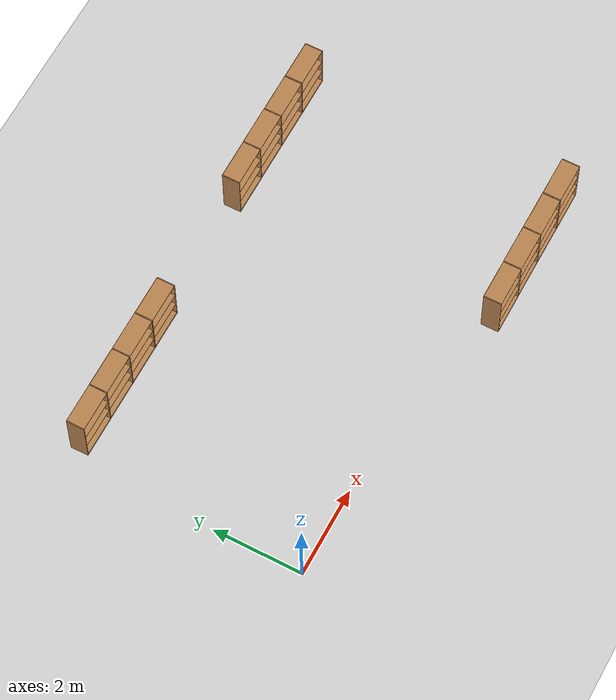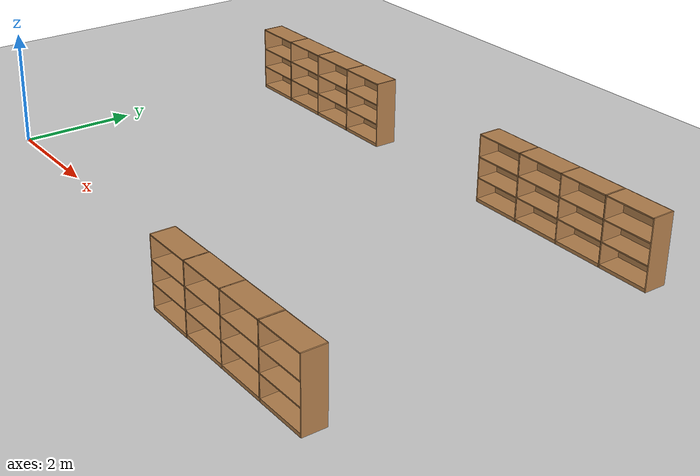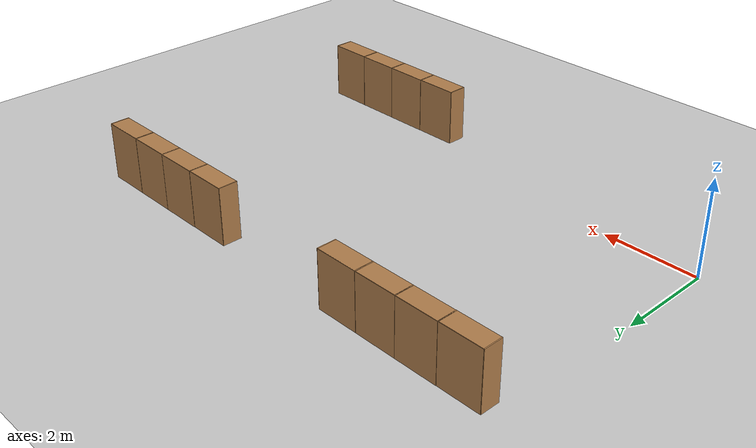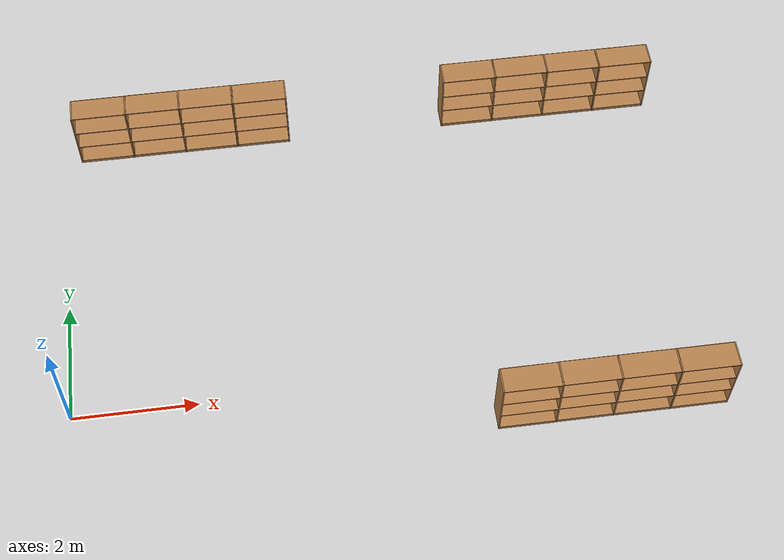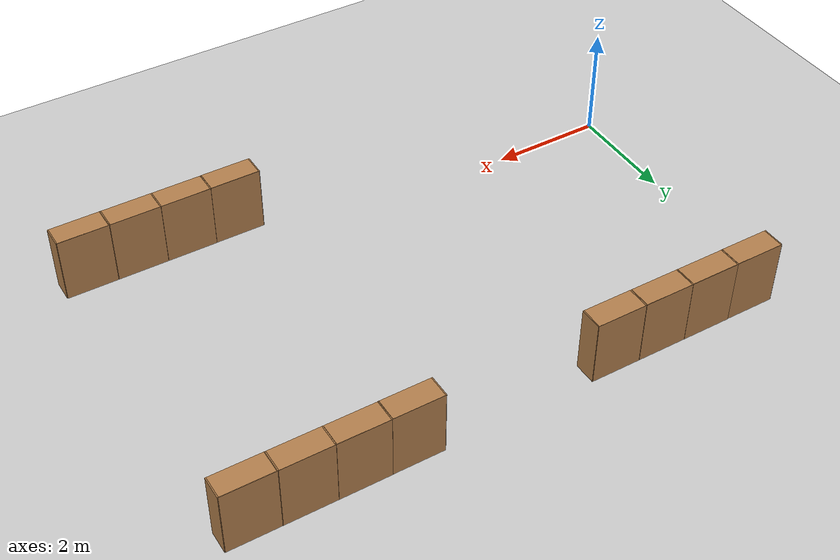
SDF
<sdf version="1.6">
 <world name="default">
  <model name="ground_plane">
   <static>1</static>
   <link name="link">
    <collision name="collision">
     <geometry><plane><normal>0 0 1</normal><size>100 100</size></plane></geometry>
     <surface><friction><ode><mu>100</mu><mu2>50</mu2></ode></friction></surface>
    </collision>
    <visual name="visual">
     <cast_shadows>0</cast_shadows>
     <geometry><plane><normal>0 0 1</normal><size>100 100</size></plane></geometry>
     <material>
      <script><uri>file://media/materials/scripts/gazebo.material</uri><name>Gazebo/Grey</name></script>
     </material>
    </visual>
   </link>
  </model>
  <model name="Bookshelf-4_clone_8">
   <model name="bookshelf">
    <static>1</static>
    <link name="link">
     <inertial><mass>1</mass></inertial>
     <collision name="back">
      <pose>0 0.005 0.6 0 -0 0</pose>
      <geometry><box><size>0.9 0.01 1.2</size></box></geometry>
     </collision>
     <visual name="visual1">
      <pose>0 0.005 0.6 0 -0 0</pose>
      <geometry><box><size>0.9 0.01 1.2</size></box></geometry>
      <material>
       <script><uri>file://media/materials/scripts/gazebo.material</uri><name>Gazebo/Wood</name></script>
      </material>
     </visual>
     <collision name="left_side">
      <pose>0.45 -0.195 0.6 0 -0 0</pose>
      <geometry><box><size>0.02 0.4 1.2</size></box></geometry>
     </collision>
     <visual name="visual2">
      <pose>0.45 -0.195 0.6 0 -0 0</pose>
      <geometry><box><size>0.02 0.4 1.2</size></box></geometry>
      <material>
       <script><uri>file://media/materials/scripts/gazebo.material</uri><name>Gazebo/Wood</name></script>
      </material>
     </visual>
     <collision name="right_side">
      <pose>-0.45 -0.195 0.6 0 -0 0</pose>
      <geometry><box><size>0.02 0.4 1.2</size></box></geometry>
     </collision>
     <visual name="visual3">
      <pose>-0.45 -0.195 0.6 0 -0 0</pose>
      <geometry><box><size>0.02 0.4 1.2</size></box></geometry>
      <material>
       <script><uri>file://media/materials/scripts/gazebo.material</uri><name>Gazebo/Wood</name></script>
      </material>
     </visual>
     <collision name="bottom">
      <pose>0 -0.195 0.03 0 -0 0</pose>
      <geometry><box><size>0.88 0.4 0.06</size></box></geometry>
     </collision>
     <visual name="visual4">
      <pose>0 -0.195 0.03 0 -0 0</pose>
      <geometry><box><size>0.88 0.4 0.06</size></box></geometry>
      <material>
       <script><uri>file://media/materials/scripts/gazebo.material</uri><name>Gazebo/Wood</name></script>
      </material>
     </visual>
     <collision name="top">
      <pose>0 -0.195 1.19 0 -0 0</pose>
      <geometry><box><size>0.88 0.4 0.02</size></box></geometry>
     </collision>
     <visual name="visual5">
      <pose>0 -0.195 1.19 0 -0 0</pose>
      <geometry><box><size>0.88 0.4 0.02</size></box></geometry>
      <material>
       <script><uri>file://media/materials/scripts/gazebo.material</uri><name>Gazebo/Wood</name></script>
      </material>
     </visual>
     <collision name="low_shelf">
      <pose>0 -0.195 0.43 0 -0 0</pose>
      <geometry><box><size>0.88 0.4 0.02</size></box></geometry>
     </collision>
     <visual name="visual6">
      <pose>0 -0.195 0.43 0 -0 0</pose>
      <geometry><box><size>0.88 0.4 0.02</size></box></geometry>
      <material>
       <script><uri>file://media/materials/scripts/gazebo.material</uri><name>Gazebo/Wood</name></script>
      </material>
     </visual>
     <collision name="high_shelf">
      <pose>0 -0.195 0.8 0 -0 0</pose>
      <geometry><box><size>0.88 0.4 0.02</size></box></geometry>
     </collision>
     <visual name="visual7">
      <pose>0 -0.195 0.8 0 -0 0</pose>
      <geometry><box><size>0.88 0.4 0.02</size></box></geometry>
      <material>
       <script><uri>file://media/materials/scripts/gazebo.material</uri><name>Gazebo/Wood</name></script>
      </material>
     </visual>
    </link>
    <pose>-1.35671 -0.002097 0 0 -0 0</pose>
   </model>
   <model name="bookshelf_0">
    <static>1</static>
    <link name="link">
     <inertial><mass>1</mass></inertial>
     <collision name="back">
      <pose>0 0.005 0.6 0 -0 0</pose>
      <geometry><box><size>0.9 0.01 1.2</size></box></geometry>
     </collision>
     <visual name="visual1">
      <pose>0 0.005 0.6 0 -0 0</pose>
      <geometry><box><size>0.9 0.01 1.2</size></box></geometry>
      <material>
       <script><uri>file://media/materials/scripts/gazebo.material</uri><name>Gazebo/Wood</name></script>
      </material>
     </visual>
     <collision name="left_side">
      <pose>0.45 -0.195 0.6 0 -0 0</pose>
      <geometry><box><size>0.02 0.4 1.2</size></box></geometry>
     </collision>
     <visual name="visual2">
      <pose>0.45 -0.195 0.6 0 -0 0</pose>
      <geometry><box><size>0.02 0.4 1.2</size></box></geometry>
      <material>
       <script><uri>file://media/materials/scripts/gazebo.material</uri><name>Gazebo/Wood</name></script>
      </material>
     </visual>
     <collision name="right_side">
      <pose>-0.45 -0.195 0.6 0 -0 0</pose>
      <geometry><box><size>0.02 0.4 1.2</size></box></geometry>
     </collision>
     <visual name="visual3">
      <pose>-0.45 -0.195 0.6 0 -0 0</pose>
      <geometry><box><size>0.02 0.4 1.2</size></box></geometry>
      <material>
       <script><uri>file://media/materials/scripts/gazebo.material</uri><name>Gazebo/Wood</name></script>
      </material>
     </visual>
     <collision name="bottom">
      <pose>0 -0.195 0.03 0 -0 0</pose>
      <geometry><box><size>0.88 0.4 0.06</size></box></geometry>
     </collision>
     <visual name="visual4">
      <pose>0 -0.195 0.03 0 -0 0</pose>
      <geometry><box><size>0.88 0.4 0.06</size></box></geometry>
      <material>
       <script><uri>file://media/materials/scripts/gazebo.material</uri><name>Gazebo/Wood</name></script>
      </material>
     </visual>
     <collision name="top">
      <pose>0 -0.195 1.19 0 -0 0</pose>
      <geometry><box><size>0.88 0.4 0.02</size></box></geometry>
     </collision>
     <visual name="visual5">
      <pose>0 -0.195 1.19 0 -0 0</pose>
      <geometry><box><size>0.88 0.4 0.02</size></box></geometry>
      <material>
       <script><uri>file://media/materials/scripts/gazebo.material</uri><name>Gazebo/Wood</name></script>
      </material>
     </visual>
     <collision name="low_shelf">
      <pose>0 -0.195 0.43 0 -0 0</pose>
      <geometry><box><size>0.88 0.4 0.02</size></box></geometry>
     </collision>
     <visual name="visual6">
      <pose>0 -0.195 0.43 0 -0 0</pose>
      <geometry><box><size>0.88 0.4 0.02</size></box></geometry>
      <material>
       <script><uri>file://media/materials/scripts/gazebo.material</uri><name>Gazebo/Wood</name></script>
      </material>
     </visual>
     <collision name="high_shelf">
      <pose>0 -0.195 0.8 0 -0 0</pose>
      <geometry><box><size>0.88 0.4 0.02</size></box></geometry>
     </collision>
     <visual name="visual7">
      <pose>0 -0.195 0.8 0 -0 0</pose>
      <geometry><box><size>0.88 0.4 0.02</size></box></geometry>
      <material>
       <script><uri>file://media/materials/scripts/gazebo.material</uri><name>Gazebo/Wood</name></script>
      </material>
     </visual>
    </link>
    <pose>-0.452974 0.001386 0 0 -0 0</pose>
   </model>
   <model name="bookshelf_1">
    <static>1</static>
    <link name="link">
     <inertial><mass>1</mass></inertial>
     <collision name="back">
      <pose>0 0.005 0.6 0 -0 0</pose>
      <geometry><box><size>0.9 0.01 1.2</size></box></geometry>
     </collision>
     <visual name="visual1">
      <pose>0 0.005 0.6 0 -0 0</pose>
      <geometry><box><size>0.9 0.01 1.2</size></box></geometry>
      <material>
       <script><uri>file://media/materials/scripts/gazebo.material</uri><name>Gazebo/Wood</name></script>
      </material>
     </visual>
     <collision name="left_side">
      <pose>0.45 -0.195 0.6 0 -0 0</pose>
      <geometry><box><size>0.02 0.4 1.2</size></box></geometry>
     </collision>
     <visual name="visual2">
      <pose>0.45 -0.195 0.6 0 -0 0</pose>
      <geometry><box><size>0.02 0.4 1.2</size></box></geometry>
      <material>
       <script><uri>file://media/materials/scripts/gazebo.material</uri><name>Gazebo/Wood</name></script>
      </material>
     </visual>
     <collision name="right_side">
      <pose>-0.45 -0.195 0.6 0 -0 0</pose>
      <geometry><box><size>0.02 0.4 1.2</size></box></geometry>
     </collision>
     <visual name="visual3">
      <pose>-0.45 -0.195 0.6 0 -0 0</pose>
      <geometry><box><size>0.02 0.4 1.2</size></box></geometry>
      <material>
       <script><uri>file://media/materials/scripts/gazebo.material</uri><name>Gazebo/Wood</name></script>
      </material>
     </visual>
     <collision name="bottom">
      <pose>0 -0.195 0.03 0 -0 0</pose>
      <geometry><box><size>0.88 0.4 0.06</size></box></geometry>
     </collision>
     <visual name="visual4">
      <pose>0 -0.195 0.03 0 -0 0</pose>
      <geometry><box><size>0.88 0.4 0.06</size></box></geometry>
      <material>
       <script><uri>file://media/materials/scripts/gazebo.material</uri><name>Gazebo/Wood</name></script>
      </material>
     </visual>
     <collision name="top">
      <pose>0 -0.195 1.19 0 -0 0</pose>
      <geometry><box><size>0.88 0.4 0.02</size></box></geometry>
     </collision>
     <visual name="visual5">
      <pose>0 -0.195 1.19 0 -0 0</pose>
      <geometry><box><size>0.88 0.4 0.02</size></box></geometry>
      <material>
       <script><uri>file://media/materials/scripts/gazebo.material</uri><name>Gazebo/Wood</name></script>
      </material>
     </visual>
     <collision name="low_shelf">
      <pose>0 -0.195 0.43 0 -0 0</pose>
      <geometry><box><size>0.88 0.4 0.02</size></box></geometry>
     </collision>
     <visual name="visual6">
      <pose>0 -0.195 0.43 0 -0 0</pose>
      <geometry><box><size>0.88 0.4 0.02</size></box></geometry>
      <material>
       <script><uri>file://media/materials/scripts/gazebo.material</uri><name>Gazebo/Wood</name></script>
      </material>
     </visual>
     <collision name="high_shelf">
      <pose>0 -0.195 0.8 0 -0 0</pose>
      <geometry><box><size>0.88 0.4 0.02</size></box></geometry>
     </collision>
     <visual name="visual7">
      <pose>0 -0.195 0.8 0 -0 0</pose>
      <geometry><box><size>0.88 0.4 0.02</size></box></geometry>
      <material>
       <script><uri>file://media/materials/scripts/gazebo.material</uri><name>Gazebo/Wood</name></script>
      </material>
     </visual>
    </link>
    <pose>0.450456 0.000733 0 0 -0 0</pose>
   </model>
   <model name="bookshelf_2">
    <static>1</static>
    <link name="link">
     <inertial><mass>1</mass></inertial>
     <collision name="back">
      <pose>0 0.005 0.6 0 -0 0</pose>
      <geometry><box><size>0.9 0.01 1.2</size></box></geometry>
     </collision>
     <visual name="visual1">
      <pose>0 0.005 0.6 0 -0 0</pose>
      <geometry><box><size>0.9 0.01 1.2</size></box></geometry>
      <material>
       <script><uri>file://media/materials/scripts/gazebo.material</uri><name>Gazebo/Wood</name></script>
      </material>
     </visual>
     <collision name="left_side">
      <pose>0.45 -0.195 0.6 0 -0 0</pose>
      <geometry><box><size>0.02 0.4 1.2</size></box></geometry>
     </collision>
     <visual name="visual2">
      <pose>0.45 -0.195 0.6 0 -0 0</pose>
      <geometry><box><size>0.02 0.4 1.2</size></box></geometry>
      <material>
       <script><uri>file://media/materials/scripts/gazebo.material</uri><name>Gazebo/Wood</name></script>
      </material>
     </visual>
     <collision name="right_side">
      <pose>-0.45 -0.195 0.6 0 -0 0</pose>
      <geometry><box><size>0.02 0.4 1.2</size></box></geometry>
     </collision>
     <visual name="visual3">
      <pose>-0.45 -0.195 0.6 0 -0 0</pose>
      <geometry><box><size>0.02 0.4 1.2</size></box></geometry>
      <material>
       <script><uri>file://media/materials/scripts/gazebo.material</uri><name>Gazebo/Wood</name></script>
      </material>
     </visual>
     <collision name="bottom">
      <pose>0 -0.195 0.03 0 -0 0</pose>
      <geometry><box><size>0.88 0.4 0.06</size></box></geometry>
     </collision>
     <visual name="visual4">
      <pose>0 -0.195 0.03 0 -0 0</pose>
      <geometry><box><size>0.88 0.4 0.06</size></box></geometry>
      <material>
       <script><uri>file://media/materials/scripts/gazebo.material</uri><name>Gazebo/Wood</name></script>
      </material>
     </visual>
     <collision name="top">
      <pose>0 -0.195 1.19 0 -0 0</pose>
      <geometry><box><size>0.88 0.4 0.02</size></box></geometry>
     </collision>
     <visual name="visual5">
      <pose>0 -0.195 1.19 0 -0 0</pose>
      <geometry><box><size>0.88 0.4 0.02</size></box></geometry>
      <material>
       <script><uri>file://media/materials/scripts/gazebo.material</uri><name>Gazebo/Wood</name></script>
      </material>
     </visual>
     <collision name="low_shelf">
      <pose>0 -0.195 0.43 0 -0 0</pose>
      <geometry><box><size>0.88 0.4 0.02</size></box></geometry>
     </collision>
     <visual name="visual6">
      <pose>0 -0.195 0.43 0 -0 0</pose>
      <geometry><box><size>0.88 0.4 0.02</size></box></geometry>
      <material>
       <script><uri>file://media/materials/scripts/gazebo.material</uri><name>Gazebo/Wood</name></script>
      </material>
     </visual>
     <collision name="high_shelf">
      <pose>0 -0.195 0.8 0 -0 0</pose>
      <geometry><box><size>0.88 0.4 0.02</size></box></geometry>
     </collision>
     <visual name="visual7">
      <pose>0 -0.195 0.8 0 -0 0</pose>
      <geometry><box><size>0.88 0.4 0.02</size></box></geometry>
      <material>
       <script><uri>file://media/materials/scripts/gazebo.material</uri><name>Gazebo/Wood</name></script>
      </material>
     </visual>
    </link>
    <pose>1.35922 -1.7e-05 0 0 -0 0</pose>
   </model>
   <static>0</static>
   <pose>8.37331 -0.621397 0 0 -0 0</pose>
  </model>
  <model name="Bookshelf-4_clone_6_clone">
   <model name="bookshelf">
    <static>1</static>
    <link name="link">
     <inertial><mass>1</mass></inertial>
     <collision name="back">
      <pose>0 0.005 0.6 0 -0 0</pose>
      <geometry><box><size>0.9 0.01 1.2</size></box></geometry>
     </collision>
     <visual name="visual1">
      <pose>0 0.005 0.6 0 -0 0</pose>
      <geometry><box><size>0.9 0.01 1.2</size></box></geometry>
      <material>
       <script><uri>file://media/materials/scripts/gazebo.material</uri><name>Gazebo/Wood</name></script>
      </material>
     </visual>
     <collision name="left_side">
      <pose>0.45 -0.195 0.6 0 -0 0</pose>
      <geometry><box><size>0.02 0.4 1.2</size></box></geometry>
     </collision>
     <visual name="visual2">
      <pose>0.45 -0.195 0.6 0 -0 0</pose>
      <geometry><box><size>0.02 0.4 1.2</size></box></geometry>
      <material>
       <script><uri>file://media/materials/scripts/gazebo.material</uri><name>Gazebo/Wood</name></script>
      </material>
     </visual>
     <collision name="right_side">
      <pose>-0.45 -0.195 0.6 0 -0 0</pose>
      <geometry><box><size>0.02 0.4 1.2</size></box></geometry>
     </collision>
     <visual name="visual3">
      <pose>-0.45 -0.195 0.6 0 -0 0</pose>
      <geometry><box><size>0.02 0.4 1.2</size></box></geometry>
      <material>
       <script><uri>file://media/materials/scripts/gazebo.material</uri><name>Gazebo/Wood</name></script>
      </material>
     </visual>
     <collision name="bottom">
      <pose>0 -0.195 0.03 0 -0 0</pose>
      <geometry><box><size>0.88 0.4 0.06</size></box></geometry>
     </collision>
     <visual name="visual4">
      <pose>0 -0.195 0.03 0 -0 0</pose>
      <geometry><box><size>0.88 0.4 0.06</size></box></geometry>
      <material>
       <script><uri>file://media/materials/scripts/gazebo.material</uri><name>Gazebo/Wood</name></script>
      </material>
     </visual>
     <collision name="top">
      <pose>0 -0.195 1.19 0 -0 0</pose>
      <geometry><box><size>0.88 0.4 0.02</size></box></geometry>
     </collision>
     <visual name="visual5">
      <pose>0 -0.195 1.19 0 -0 0</pose>
      <geometry><box><size>0.88 0.4 0.02</size></box></geometry>
      <material>
       <script><uri>file://media/materials/scripts/gazebo.material</uri><name>Gazebo/Wood</name></script>
      </material>
     </visual>
     <collision name="low_shelf">
      <pose>0 -0.195 0.43 0 -0 0</pose>
      <geometry><box><size>0.88 0.4 0.02</size></box></geometry>
     </collision>
     <visual name="visual6">
      <pose>0 -0.195 0.43 0 -0 0</pose>
      <geometry><box><size>0.88 0.4 0.02</size></box></geometry>
      <material>
       <script><uri>file://media/materials/scripts/gazebo.material</uri><name>Gazebo/Wood</name></script>
      </material>
     </visual>
     <collision name="high_shelf">
      <pose>0 -0.195 0.8 0 -0 0</pose>
      <geometry><box><size>0.88 0.4 0.02</size></box></geometry>
     </collision>
     <visual name="visual7">
      <pose>0 -0.195 0.8 0 -0 0</pose>
      <geometry><box><size>0.88 0.4 0.02</size></box></geometry>
      <material>
       <script><uri>file://media/materials/scripts/gazebo.material</uri><name>Gazebo/Wood</name></script>
      </material>
     </visual>
    </link>
    <pose>-1.35671 -0.002097 0 0 -0 0</pose>
   </model>
   <model name="bookshelf_0">
    <static>1</static>
    <link name="link">
     <inertial><mass>1</mass></inertial>
     <collision name="back">
      <pose>0 0.005 0.6 0 -0 0</pose>
      <geometry><box><size>0.9 0.01 1.2</size></box></geometry>
     </collision>
     <visual name="visual1">
      <pose>0 0.005 0.6 0 -0 0</pose>
      <geometry><box><size>0.9 0.01 1.2</size></box></geometry>
      <material>
       <script><uri>file://media/materials/scripts/gazebo.material</uri><name>Gazebo/Wood</name></script>
      </material>
     </visual>
     <collision name="left_side">
      <pose>0.45 -0.195 0.6 0 -0 0</pose>
      <geometry><box><size>0.02 0.4 1.2</size></box></geometry>
     </collision>
     <visual name="visual2">
      <pose>0.45 -0.195 0.6 0 -0 0</pose>
      <geometry><box><size>0.02 0.4 1.2</size></box></geometry>
      <material>
       <script><uri>file://media/materials/scripts/gazebo.material</uri><name>Gazebo/Wood</name></script>
      </material>
     </visual>
     <collision name="right_side">
      <pose>-0.45 -0.195 0.6 0 -0 0</pose>
      <geometry><box><size>0.02 0.4 1.2</size></box></geometry>
     </collision>
     <visual name="visual3">
      <pose>-0.45 -0.195 0.6 0 -0 0</pose>
      <geometry><box><size>0.02 0.4 1.2</size></box></geometry>
      <material>
       <script><uri>file://media/materials/scripts/gazebo.material</uri><name>Gazebo/Wood</name></script>
      </material>
     </visual>
     <collision name="bottom">
      <pose>0 -0.195 0.03 0 -0 0</pose>
      <geometry><box><size>0.88 0.4 0.06</size></box></geometry>
     </collision>
     <visual name="visual4">
      <pose>0 -0.195 0.03 0 -0 0</pose>
      <geometry><box><size>0.88 0.4 0.06</size></box></geometry>
      <material>
       <script><uri>file://media/materials/scripts/gazebo.material</uri><name>Gazebo/Wood</name></script>
      </material>
     </visual>
     <collision name="top">
      <pose>0 -0.195 1.19 0 -0 0</pose>
      <geometry><box><size>0.88 0.4 0.02</size></box></geometry>
     </collision>
     <visual name="visual5">
      <pose>0 -0.195 1.19 0 -0 0</pose>
      <geometry><box><size>0.88 0.4 0.02</size></box></geometry>
      <material>
       <script><uri>file://media/materials/scripts/gazebo.material</uri><name>Gazebo/Wood</name></script>
      </material>
     </visual>
     <collision name="low_shelf">
      <pose>0 -0.195 0.43 0 -0 0</pose>
      <geometry><box><size>0.88 0.4 0.02</size></box></geometry>
     </collision>
     <visual name="visual6">
      <pose>0 -0.195 0.43 0 -0 0</pose>
      <geometry><box><size>0.88 0.4 0.02</size></box></geometry>
      <material>
       <script><uri>file://media/materials/scripts/gazebo.material</uri><name>Gazebo/Wood</name></script>
      </material>
     </visual>
     <collision name="high_shelf">
      <pose>0 -0.195 0.8 0 -0 0</pose>
      <geometry><box><size>0.88 0.4 0.02</size></box></geometry>
     </collision>
     <visual name="visual7">
      <pose>0 -0.195 0.8 0 -0 0</pose>
      <geometry><box><size>0.88 0.4 0.02</size></box></geometry>
      <material>
       <script><uri>file://media/materials/scripts/gazebo.material</uri><name>Gazebo/Wood</name></script>
      </material>
     </visual>
    </link>
    <pose>-0.452974 0.001386 0 0 -0 0</pose>
   </model>
   <model name="bookshelf_1">
    <static>1</static>
    <link name="link">
     <inertial><mass>1</mass></inertial>
     <collision name="back">
      <pose>0 0.005 0.6 0 -0 0</pose>
      <geometry><box><size>0.9 0.01 1.2</size></box></geometry>
     </collision>
     <visual name="visual1">
      <pose>0 0.005 0.6 0 -0 0</pose>
      <geometry><box><size>0.9 0.01 1.2</size></box></geometry>
      <material>
       <script><uri>file://media/materials/scripts/gazebo.material</uri><name>Gazebo/Wood</name></script>
      </material>
     </visual>
     <collision name="left_side">
      <pose>0.45 -0.195 0.6 0 -0 0</pose>
      <geometry><box><size>0.02 0.4 1.2</size></box></geometry>
     </collision>
     <visual name="visual2">
      <pose>0.45 -0.195 0.6 0 -0 0</pose>
      <geometry><box><size>0.02 0.4 1.2</size></box></geometry>
      <material>
       <script><uri>file://media/materials/scripts/gazebo.material</uri><name>Gazebo/Wood</name></script>
      </material>
     </visual>
     <collision name="right_side">
      <pose>-0.45 -0.195 0.6 0 -0 0</pose>
      <geometry><box><size>0.02 0.4 1.2</size></box></geometry>
     </collision>
     <visual name="visual3">
      <pose>-0.45 -0.195 0.6 0 -0 0</pose>
      <geometry><box><size>0.02 0.4 1.2</size></box></geometry>
      <material>
       <script><uri>file://media/materials/scripts/gazebo.material</uri><name>Gazebo/Wood</name></script>
      </material>
     </visual>
     <collision name="bottom">
      <pose>0 -0.195 0.03 0 -0 0</pose>
      <geometry><box><size>0.88 0.4 0.06</size></box></geometry>
     </collision>
     <visual name="visual4">
      <pose>0 -0.195 0.03 0 -0 0</pose>
      <geometry><box><size>0.88 0.4 0.06</size></box></geometry>
      <material>
       <script><uri>file://media/materials/scripts/gazebo.material</uri><name>Gazebo/Wood</name></script>
      </material>
     </visual>
     <collision name="top">
      <pose>0 -0.195 1.19 0 -0 0</pose>
      <geometry><box><size>0.88 0.4 0.02</size></box></geometry>
     </collision>
     <visual name="visual5">
      <pose>0 -0.195 1.19 0 -0 0</pose>
      <geometry><box><size>0.88 0.4 0.02</size></box></geometry>
      <material>
       <script><uri>file://media/materials/scripts/gazebo.material</uri><name>Gazebo/Wood</name></script>
      </material>
     </visual>
     <collision name="low_shelf">
      <pose>0 -0.195 0.43 0 -0 0</pose>
      <geometry><box><size>0.88 0.4 0.02</size></box></geometry>
     </collision>
     <visual name="visual6">
      <pose>0 -0.195 0.43 0 -0 0</pose>
      <geometry><box><size>0.88 0.4 0.02</size></box></geometry>
      <material>
       <script><uri>file://media/materials/scripts/gazebo.material</uri><name>Gazebo/Wood</name></script>
      </material>
     </visual>
     <collision name="high_shelf">
      <pose>0 -0.195 0.8 0 -0 0</pose>
      <geometry><box><size>0.88 0.4 0.02</size></box></geometry>
     </collision>
     <visual name="visual7">
      <pose>0 -0.195 0.8 0 -0 0</pose>
      <geometry><box><size>0.88 0.4 0.02</size></box></geometry>
      <material>
       <script><uri>file://media/materials/scripts/gazebo.material</uri><name>Gazebo/Wood</name></script>
      </material>
     </visual>
    </link>
    <pose>0.450456 0.000733 0 0 -0 0</pose>
   </model>
   <model name="bookshelf_2">
    <static>1</static>
    <link name="link">
     <inertial><mass>1</mass></inertial>
     <collision name="back">
      <pose>0 0.005 0.6 0 -0 0</pose>
      <geometry><box><size>0.9 0.01 1.2</size></box></geometry>
     </collision>
     <visual name="visual1">
      <pose>0 0.005 0.6 0 -0 0</pose>
      <geometry><box><size>0.9 0.01 1.2</size></box></geometry>
      <material>
       <script><uri>file://media/materials/scripts/gazebo.material</uri><name>Gazebo/Wood</name></script>
      </material>
     </visual>
     <collision name="left_side">
      <pose>0.45 -0.195 0.6 0 -0 0</pose>
      <geometry><box><size>0.02 0.4 1.2</size></box></geometry>
     </collision>
     <visual name="visual2">
      <pose>0.45 -0.195 0.6 0 -0 0</pose>
      <geometry><box><size>0.02 0.4 1.2</size></box></geometry>
      <material>
       <script><uri>file://media/materials/scripts/gazebo.material</uri><name>Gazebo/Wood</name></script>
      </material>
     </visual>
     <collision name="right_side">
      <pose>-0.45 -0.195 0.6 0 -0 0</pose>
      <geometry><box><size>0.02 0.4 1.2</size></box></geometry>
     </collision>
     <visual name="visual3">
      <pose>-0.45 -0.195 0.6 0 -0 0</pose>
      <geometry><box><size>0.02 0.4 1.2</size></box></geometry>
      <material>
       <script><uri>file://media/materials/scripts/gazebo.material</uri><name>Gazebo/Wood</name></script>
      </material>
     </visual>
     <collision name="bottom">
      <pose>0 -0.195 0.03 0 -0 0</pose>
      <geometry><box><size>0.88 0.4 0.06</size></box></geometry>
     </collision>
     <visual name="visual4">
      <pose>0 -0.195 0.03 0 -0 0</pose>
      <geometry><box><size>0.88 0.4 0.06</size></box></geometry>
      <material>
       <script><uri>file://media/materials/scripts/gazebo.material</uri><name>Gazebo/Wood</name></script>
      </material>
     </visual>
     <collision name="top">
      <pose>0 -0.195 1.19 0 -0 0</pose>
      <geometry><box><size>0.88 0.4 0.02</size></box></geometry>
     </collision>
     <visual name="visual5">
      <pose>0 -0.195 1.19 0 -0 0</pose>
      <geometry><box><size>0.88 0.4 0.02</size></box></geometry>
      <material>
       <script><uri>file://media/materials/scripts/gazebo.material</uri><name>Gazebo/Wood</name></script>
      </material>
     </visual>
     <collision name="low_shelf">
      <pose>0 -0.195 0.43 0 -0 0</pose>
      <geometry><box><size>0.88 0.4 0.02</size></box></geometry>
     </collision>
     <visual name="visual6">
      <pose>0 -0.195 0.43 0 -0 0</pose>
      <geometry><box><size>0.88 0.4 0.02</size></box></geometry>
      <material>
       <script><uri>file://media/materials/scripts/gazebo.material</uri><name>Gazebo/Wood</name></script>
      </material>
     </visual>
     <collision name="high_shelf">
      <pose>0 -0.195 0.8 0 -0 0</pose>
      <geometry><box><size>0.88 0.4 0.02</size></box></geometry>
     </collision>
     <visual name="visual7">
      <pose>0 -0.195 0.8 0 -0 0</pose>
      <geometry><box><size>0.88 0.4 0.02</size></box></geometry>
      <material>
       <script><uri>file://media/materials/scripts/gazebo.material</uri><name>Gazebo/Wood</name></script>
      </material>
     </visual>
    </link>
    <pose>1.35922 -1.7e-05 0 0 -0 0</pose>
   </model>
   <static>0</static>
   <pose>8.37422 5.37185 0 0 -0 0</pose>
  </model>
  <model name="Bookshelf-4_clone_6_clone_0">
   <model name="bookshelf">
    <static>1</static>
    <link name="link">
     <inertial><mass>1</mass></inertial>
     <collision name="back">
      <pose>0 0.005 0.6 0 -0 0</pose>
      <geometry><box><size>0.9 0.01 1.2</size></box></geometry>
     </collision>
     <visual name="visual1">
      <pose>0 0.005 0.6 0 -0 0</pose>
      <geometry><box><size>0.9 0.01 1.2</size></box></geometry>
      <material>
       <script><uri>file://media/materials/scripts/gazebo.material</uri><name>Gazebo/Wood</name></script>
      </material>
     </visual>
     <collision name="left_side">
      <pose>0.45 -0.195 0.6 0 -0 0</pose>
      <geometry><box><size>0.02 0.4 1.2</size></box></geometry>
     </collision>
     <visual name="visual2">
      <pose>0.45 -0.195 0.6 0 -0 0</pose>
      <geometry><box><size>0.02 0.4 1.2</size></box></geometry>
      <material>
       <script><uri>file://media/materials/scripts/gazebo.material</uri><name>Gazebo/Wood</name></script>
      </material>
     </visual>
     <collision name="right_side">
      <pose>-0.45 -0.195 0.6 0 -0 0</pose>
      <geometry><box><size>0.02 0.4 1.2</size></box></geometry>
     </collision>
     <visual name="visual3">
      <pose>-0.45 -0.195 0.6 0 -0 0</pose>
      <geometry><box><size>0.02 0.4 1.2</size></box></geometry>
      <material>
       <script><uri>file://media/materials/scripts/gazebo.material</uri><name>Gazebo/Wood</name></script>
      </material>
     </visual>
     <collision name="bottom">
      <pose>0 -0.195 0.03 0 -0 0</pose>
      <geometry><box><size>0.88 0.4 0.06</size></box></geometry>
     </collision>
     <visual name="visual4">
      <pose>0 -0.195 0.03 0 -0 0</pose>
      <geometry><box><size>0.88 0.4 0.06</size></box></geometry>
      <material>
       <script><uri>file://media/materials/scripts/gazebo.material</uri><name>Gazebo/Wood</name></script>
      </material>
     </visual>
     <collision name="top">
      <pose>0 -0.195 1.19 0 -0 0</pose>
      <geometry><box><size>0.88 0.4 0.02</size></box></geometry>
     </collision>
     <visual name="visual5">
      <pose>0 -0.195 1.19 0 -0 0</pose>
      <geometry><box><size>0.88 0.4 0.02</size></box></geometry>
      <material>
       <script><uri>file://media/materials/scripts/gazebo.material</uri><name>Gazebo/Wood</name></script>
      </material>
     </visual>
     <collision name="low_shelf">
      <pose>0 -0.195 0.43 0 -0 0</pose>
      <geometry><box><size>0.88 0.4 0.02</size></box></geometry>
     </collision>
     <visual name="visual6">
      <pose>0 -0.195 0.43 0 -0 0</pose>
      <geometry><box><size>0.88 0.4 0.02</size></box></geometry>
      <material>
       <script><uri>file://media/materials/scripts/gazebo.material</uri><name>Gazebo/Wood</name></script>
      </material>
     </visual>
     <collision name="high_shelf">
      <pose>0 -0.195 0.8 0 -0 0</pose>
      <geometry><box><size>0.88 0.4 0.02</size></box></geometry>
     </collision>
     <visual name="visual7">
      <pose>0 -0.195 0.8 0 -0 0</pose>
      <geometry><box><size>0.88 0.4 0.02</size></box></geometry>
      <material>
       <script><uri>file://media/materials/scripts/gazebo.material</uri><name>Gazebo/Wood</name></script>
      </material>
     </visual>
    </link>
    <pose>-1.35671 -0.002097 0 0 -0 0</pose>
   </model>
   <model name="bookshelf_0">
    <static>1</static>
    <link name="link">
     <inertial><mass>1</mass></inertial>
     <collision name="back">
      <pose>0 0.005 0.6 0 -0 0</pose>
      <geometry><box><size>0.9 0.01 1.2</size></box></geometry>
     </collision>
     <visual name="visual1">
      <pose>0 0.005 0.6 0 -0 0</pose>
      <geometry><box><size>0.9 0.01 1.2</size></box></geometry>
      <material>
       <script><uri>file://media/materials/scripts/gazebo.material</uri><name>Gazebo/Wood</name></script>
      </material>
     </visual>
     <collision name="left_side">
      <pose>0.45 -0.195 0.6 0 -0 0</pose>
      <geometry><box><size>0.02 0.4 1.2</size></box></geometry>
     </collision>
     <visual name="visual2">
      <pose>0.45 -0.195 0.6 0 -0 0</pose>
      <geometry><box><size>0.02 0.4 1.2</size></box></geometry>
      <material>
       <script><uri>file://media/materials/scripts/gazebo.material</uri><name>Gazebo/Wood</name></script>
      </material>
     </visual>
     <collision name="right_side">
      <pose>-0.45 -0.195 0.6 0 -0 0</pose>
      <geometry><box><size>0.02 0.4 1.2</size></box></geometry>
     </collision>
     <visual name="visual3">
      <pose>-0.45 -0.195 0.6 0 -0 0</pose>
      <geometry><box><size>0.02 0.4 1.2</size></box></geometry>
      <material>
       <script><uri>file://media/materials/scripts/gazebo.material</uri><name>Gazebo/Wood</name></script>
      </material>
     </visual>
     <collision name="bottom">
      <pose>0 -0.195 0.03 0 -0 0</pose>
      <geometry><box><size>0.88 0.4 0.06</size></box></geometry>
     </collision>
     <visual name="visual4">
      <pose>0 -0.195 0.03 0 -0 0</pose>
      <geometry><box><size>0.88 0.4 0.06</size></box></geometry>
      <material>
       <script><uri>file://media/materials/scripts/gazebo.material</uri><name>Gazebo/Wood</name></script>
      </material>
     </visual>
     <collision name="top">
      <pose>0 -0.195 1.19 0 -0 0</pose>
      <geometry><box><size>0.88 0.4 0.02</size></box></geometry>
     </collision>
     <visual name="visual5">
      <pose>0 -0.195 1.19 0 -0 0</pose>
      <geometry><box><size>0.88 0.4 0.02</size></box></geometry>
      <material>
       <script><uri>file://media/materials/scripts/gazebo.material</uri><name>Gazebo/Wood</name></script>
      </material>
     </visual>
     <collision name="low_shelf">
      <pose>0 -0.195 0.43 0 -0 0</pose>
      <geometry><box><size>0.88 0.4 0.02</size></box></geometry>
     </collision>
     <visual name="visual6">
      <pose>0 -0.195 0.43 0 -0 0</pose>
      <geometry><box><size>0.88 0.4 0.02</size></box></geometry>
      <material>
       <script><uri>file://media/materials/scripts/gazebo.material</uri><name>Gazebo/Wood</name></script>
      </material>
     </visual>
     <collision name="high_shelf">
      <pose>0 -0.195 0.8 0 -0 0</pose>
      <geometry><box><size>0.88 0.4 0.02</size></box></geometry>
     </collision>
     <visual name="visual7">
      <pose>0 -0.195 0.8 0 -0 0</pose>
      <geometry><box><size>0.88 0.4 0.02</size></box></geometry>
      <material>
       <script><uri>file://media/materials/scripts/gazebo.material</uri><name>Gazebo/Wood</name></script>
      </material>
     </visual>
    </link>
    <pose>-0.452974 0.001386 0 0 -0 0</pose>
   </model>
   <model name="bookshelf_1">
    <static>1</static>
    <link name="link">
     <inertial><mass>1</mass></inertial>
     <collision name="back">
      <pose>0 0.005 0.6 0 -0 0</pose>
      <geometry><box><size>0.9 0.01 1.2</size></box></geometry>
     </collision>
     <visual name="visual1">
      <pose>0 0.005 0.6 0 -0 0</pose>
      <geometry><box><size>0.9 0.01 1.2</size></box></geometry>
      <material>
       <script><uri>file://media/materials/scripts/gazebo.material</uri><name>Gazebo/Wood</name></script>
      </material>
     </visual>
     <collision name="left_side">
      <pose>0.45 -0.195 0.6 0 -0 0</pose>
      <geometry><box><size>0.02 0.4 1.2</size></box></geometry>
     </collision>
     <visual name="visual2">
      <pose>0.45 -0.195 0.6 0 -0 0</pose>
      <geometry><box><size>0.02 0.4 1.2</size></box></geometry>
      <material>
       <script><uri>file://media/materials/scripts/gazebo.material</uri><name>Gazebo/Wood</name></script>
      </material>
     </visual>
     <collision name="right_side">
      <pose>-0.45 -0.195 0.6 0 -0 0</pose>
      <geometry><box><size>0.02 0.4 1.2</size></box></geometry>
     </collision>
     <visual name="visual3">
      <pose>-0.45 -0.195 0.6 0 -0 0</pose>
      <geometry><box><size>0.02 0.4 1.2</size></box></geometry>
      <material>
       <script><uri>file://media/materials/scripts/gazebo.material</uri><name>Gazebo/Wood</name></script>
      </material>
     </visual>
     <collision name="bottom">
      <pose>0 -0.195 0.03 0 -0 0</pose>
      <geometry><box><size>0.88 0.4 0.06</size></box></geometry>
     </collision>
     <visual name="visual4">
      <pose>0 -0.195 0.03 0 -0 0</pose>
      <geometry><box><size>0.88 0.4 0.06</size></box></geometry>
      <material>
       <script><uri>file://media/materials/scripts/gazebo.material</uri><name>Gazebo/Wood</name></script>
      </material>
     </visual>
     <collision name="top">
      <pose>0 -0.195 1.19 0 -0 0</pose>
      <geometry><box><size>0.88 0.4 0.02</size></box></geometry>
     </collision>
     <visual name="visual5">
      <pose>0 -0.195 1.19 0 -0 0</pose>
      <geometry><box><size>0.88 0.4 0.02</size></box></geometry>
      <material>
       <script><uri>file://media/materials/scripts/gazebo.material</uri><name>Gazebo/Wood</name></script>
      </material>
     </visual>
     <collision name="low_shelf">
      <pose>0 -0.195 0.43 0 -0 0</pose>
      <geometry><box><size>0.88 0.4 0.02</size></box></geometry>
     </collision>
     <visual name="visual6">
      <pose>0 -0.195 0.43 0 -0 0</pose>
      <geometry><box><size>0.88 0.4 0.02</size></box></geometry>
      <material>
       <script><uri>file://media/materials/scripts/gazebo.material</uri><name>Gazebo/Wood</name></script>
      </material>
     </visual>
     <collision name="high_shelf">
      <pose>0 -0.195 0.8 0 -0 0</pose>
      <geometry><box><size>0.88 0.4 0.02</size></box></geometry>
     </collision>
     <visual name="visual7">
      <pose>0 -0.195 0.8 0 -0 0</pose>
      <geometry><box><size>0.88 0.4 0.02</size></box></geometry>
      <material>
       <script><uri>file://media/materials/scripts/gazebo.material</uri><name>Gazebo/Wood</name></script>
      </material>
     </visual>
    </link>
    <pose>0.450456 0.000733 0 0 -0 0</pose>
   </model>
   <model name="bookshelf_2">
    <static>1</static>
    <link name="link">
     <inertial><mass>1</mass></inertial>
     <collision name="back">
      <pose>0 0.005 0.6 0 -0 0</pose>
      <geometry><box><size>0.9 0.01 1.2</size></box></geometry>
     </collision>
     <visual name="visual1">
      <pose>0 0.005 0.6 0 -0 0</pose>
      <geometry><box><size>0.9 0.01 1.2</size></box></geometry>
      <material>
       <script><uri>file://media/materials/scripts/gazebo.material</uri><name>Gazebo/Wood</name></script>
      </material>
     </visual>
     <collision name="left_side">
      <pose>0.45 -0.195 0.6 0 -0 0</pose>
      <geometry><box><size>0.02 0.4 1.2</size></box></geometry>
     </collision>
     <visual name="visual2">
      <pose>0.45 -0.195 0.6 0 -0 0</pose>
      <geometry><box><size>0.02 0.4 1.2</size></box></geometry>
      <material>
       <script><uri>file://media/materials/scripts/gazebo.material</uri><name>Gazebo/Wood</name></script>
      </material>
     </visual>
     <collision name="right_side">
      <pose>-0.45 -0.195 0.6 0 -0 0</pose>
      <geometry><box><size>0.02 0.4 1.2</size></box></geometry>
     </collision>
     <visual name="visual3">
      <pose>-0.45 -0.195 0.6 0 -0 0</pose>
      <geometry><box><size>0.02 0.4 1.2</size></box></geometry>
      <material>
       <script><uri>file://media/materials/scripts/gazebo.material</uri><name>Gazebo/Wood</name></script>
      </material>
     </visual>
     <collision name="bottom">
      <pose>0 -0.195 0.03 0 -0 0</pose>
      <geometry><box><size>0.88 0.4 0.06</size></box></geometry>
     </collision>
     <visual name="visual4">
      <pose>0 -0.195 0.03 0 -0 0</pose>
      <geometry><box><size>0.88 0.4 0.06</size></box></geometry>
      <material>
       <script><uri>file://media/materials/scripts/gazebo.material</uri><name>Gazebo/Wood</name></script>
      </material>
     </visual>
     <collision name="top">
      <pose>0 -0.195 1.19 0 -0 0</pose>
      <geometry><box><size>0.88 0.4 0.02</size></box></geometry>
     </collision>
     <visual name="visual5">
      <pose>0 -0.195 1.19 0 -0 0</pose>
      <geometry><box><size>0.88 0.4 0.02</size></box></geometry>
      <material>
       <script><uri>file://media/materials/scripts/gazebo.material</uri><name>Gazebo/Wood</name></script>
      </material>
     </visual>
     <collision name="low_shelf">
      <pose>0 -0.195 0.43 0 -0 0</pose>
      <geometry><box><size>0.88 0.4 0.02</size></box></geometry>
     </collision>
     <visual name="visual6">
      <pose>0 -0.195 0.43 0 -0 0</pose>
      <geometry><box><size>0.88 0.4 0.02</size></box></geometry>
      <material>
       <script><uri>file://media/materials/scripts/gazebo.material</uri><name>Gazebo/Wood</name></script>
      </material>
     </visual>
     <collision name="high_shelf">
      <pose>0 -0.195 0.8 0 -0 0</pose>
      <geometry><box><size>0.88 0.4 0.02</size></box></geometry>
     </collision>
     <visual name="visual7">
      <pose>0 -0.195 0.8 0 -0 0</pose>
      <geometry><box><size>0.88 0.4 0.02</size></box></geometry>
      <material>
       <script><uri>file://media/materials/scripts/gazebo.material</uri><name>Gazebo/Wood</name></script>
      </material>
     </visual>
    </link>
    <pose>1.35922 -1.7e-05 0 0 -0 0</pose>
   </model>
   <static>0</static>
   <pose>2.05374 5.37185 0 0 -0 0</pose>
  </model>
 </world>
</sdf>
